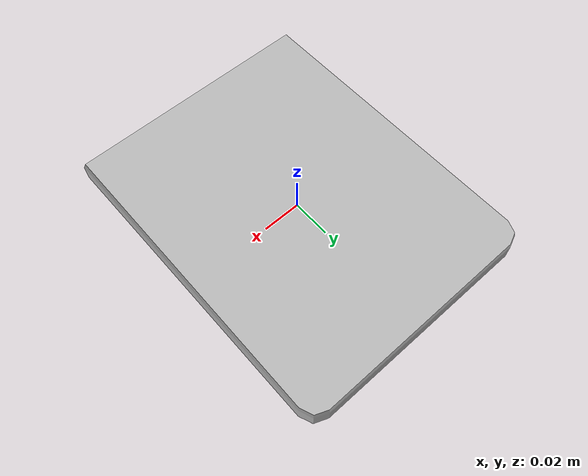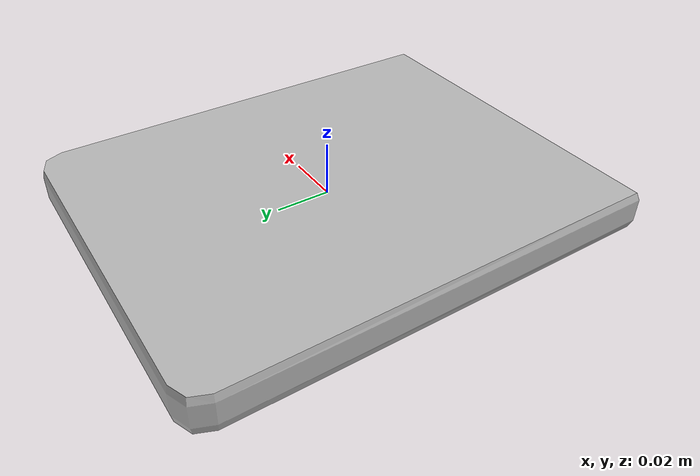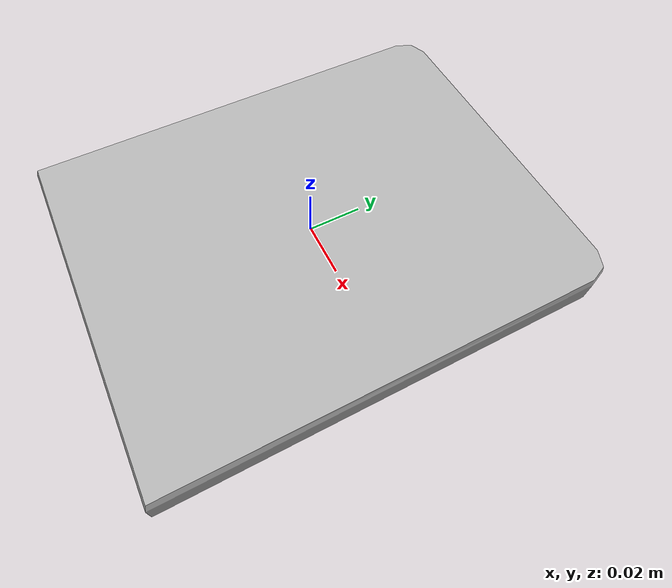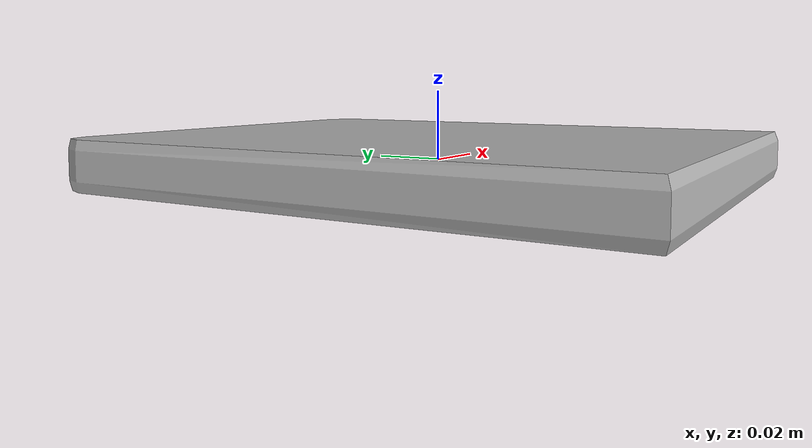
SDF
<?xml version='1.0'?>
<sdf version="1.4">
	<model name="bluray">
		<static>1</static>
		<link name="link">
			<visual name="mesh">
				<geometry>
					<mesh>
						<uri>model://meshes/bluray.dae</uri>
					</mesh>
				</geometry>
			</visual>
			<collision name="collider">
				<pose>0 0 0 0 0 0</pose>
				<geometry>
					<box>
						<size>0.132 0.168 0.014</size>
					</box>
				</geometry>
			</collision>
		</link>
	</model>
</sdf>
